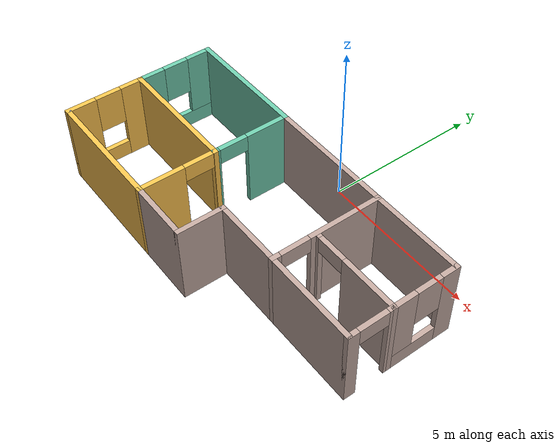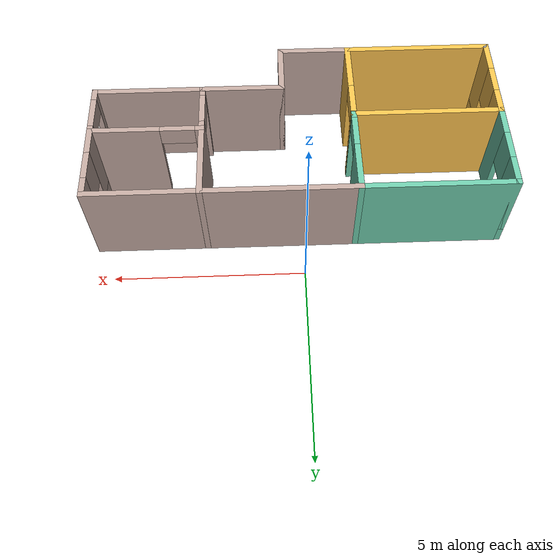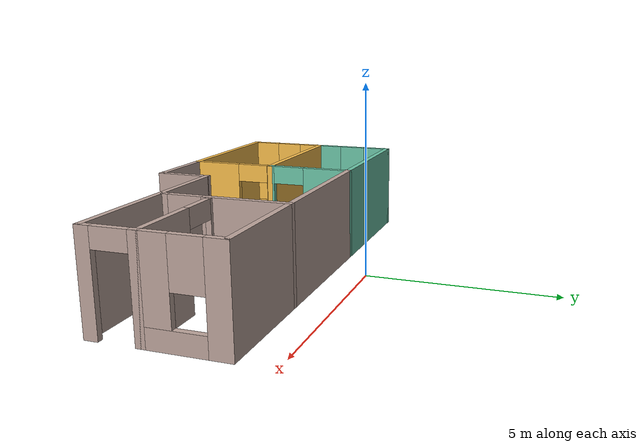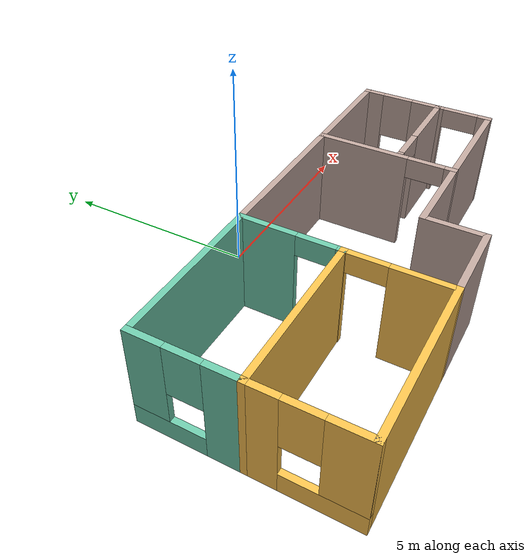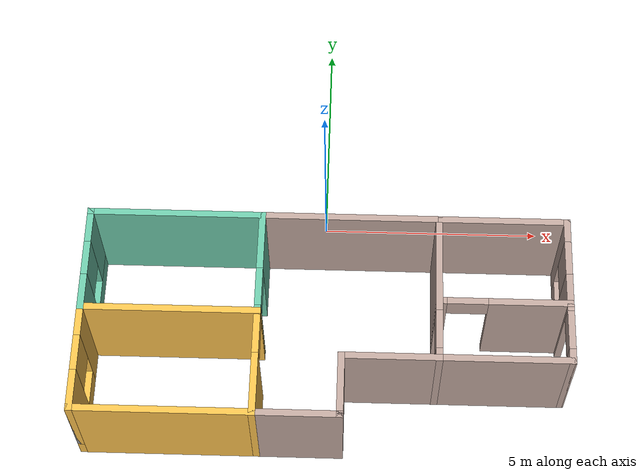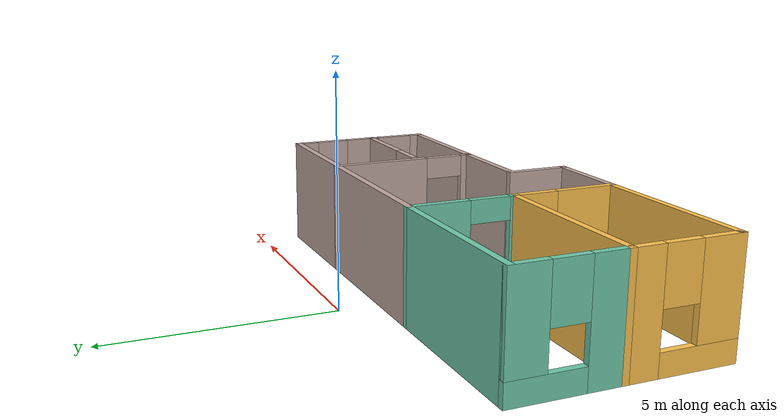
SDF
<?xml version='1.0'?>
<sdf version='1.6'>
  <model name='room1'>
    <pose frame=''>0.095 -3.31 0 0 -0 0</pose>
    <link name='Wall_0'>
      <pose frame=''>-5.325 1.175 0 0 -0 1.5708</pose>
      <visual name='Wall_0_Visual_0'>
        <pose frame=''>-0.821538 0 1.25 0 -0 0</pose>
        <geometry>
          <box>
            <size>0.856925 0.15 2.5</size>
          </box>
        </geometry>
        <material>
          <script>
            <uri>file://media/materials/scripts/gazebo.material</uri>
            <name>Gazebo/Grey</name>
          </script>
          <ambient>0.435294 0.796078 0.67451 1</ambient>
        </material>
        <meta>
          <layer>0</layer>
        </meta>
      </visual>
      <collision name='Wall_0_Collision_0'>
        <geometry>
          <box>
            <size>0.856925 0.15 2.5</size>
          </box>
        </geometry>
        <pose frame=''>-0.821538 0 1.25 0 -0 0</pose>
      </collision>
      <visual name='Wall_0_Visual_1'>
        <pose frame=''>0.428462 0 0.25 0 -0 0</pose>
        <geometry>
          <box>
            <size>1.64308 0.15 0.5</size>
          </box>
        </geometry>
        <material>
          <script>
            <uri>file://media/materials/scripts/gazebo.material</uri>
            <name>Gazebo/Grey</name>
          </script>
          <ambient>0.435294 0.796078 0.67451 1</ambient>
        </material>
        <meta>
          <layer>0</layer>
        </meta>
      </visual>
      <collision name='Wall_0_Collision_1'>
        <geometry>
          <box>
            <size>1.64308 0.15 0.5</size>
          </box>
        </geometry>
        <pose frame=''>0.428462 0 0.25 0 -0 0</pose>
      </collision>
      <visual name='Wall_0_Visual_2'>
        <pose frame=''>0.828462 0 1.5 0 -0 0</pose>
        <geometry>
          <box>
            <size>0.843075 0.15 2</size>
          </box>
        </geometry>
        <material>
          <script>
            <uri>file://media/materials/scripts/gazebo.material</uri>
            <name>Gazebo/Grey</name>
          </script>
          <ambient>0.435294 0.796078 0.67451 1</ambient>
        </material>
        <meta>
          <layer>0</layer>
        </meta>
      </visual>
      <collision name='Wall_0_Collision_2'>
        <geometry>
          <box>
            <size>0.843075 0.15 2</size>
          </box>
        </geometry>
        <pose frame=''>0.828462 0 1.5 0 -0 0</pose>
      </collision>
      <visual name='Wall_0_Visual_3'>
        <pose frame=''>0.006925 0 1.9 0 -0 0</pose>
        <geometry>
          <box>
            <size>0.8 0.15 1.2</size>
          </box>
        </geometry>
        <material>
          <script>
            <uri>file://media/materials/scripts/gazebo.material</uri>
            <name>Gazebo/Grey</name>
          </script>
          <ambient>0.435294 0.796078 0.67451 1</ambient>
        </material>
        <meta>
          <layer>0</layer>
        </meta>
      </visual>
      <collision name='Wall_0_Collision_3'>
        <geometry>
          <box>
            <size>0.8 0.15 1.2</size>
          </box>
        </geometry>
        <pose frame=''>0.006925 0 1.9 0 -0 0</pose>
      </collision>
    </link>
    <link name='Wall_1'>
      <collision name='Wall_1_Collision'>
        <geometry>
          <box>
            <size>4 0.15 2.5</size>
          </box>
        </geometry>
        <pose frame=''>0 0 1.25 0 -0 0</pose>
      </collision>
      <visual name='Wall_1_Visual'>
        <pose frame=''>0 0 1.25 0 -0 0</pose>
        <geometry>
          <box>
            <size>4 0.15 2.5</size>
          </box>
        </geometry>
        <material>
          <script>
            <uri>file://media/materials/scripts/gazebo.material</uri>
            <name>Gazebo/Grey</name>
          </script>
          <ambient>0.435294 0.796078 0.67451 1</ambient>
        </material>
        <meta>
          <layer>0</layer>
        </meta>
      </visual>
      <pose frame=''>-3.4 2.35 0 0 -0 0</pose>
    </link>
    <link name='Wall_10'>
      <collision name='Wall_10_Collision'>
        <geometry>
          <box>
            <size>0.15 0.15 2.5</size>
          </box>
        </geometry>
        <pose frame=''>0 0 1.25 0 -0 0</pose>
      </collision>
      <visual name='Wall_10_Visual'>
        <pose frame=''>0 0 1.25 0 -0 0</pose>
        <geometry>
          <box>
            <size>0.15 0.15 2.5</size>
          </box>
        </geometry>
        <material>
          <script>
            <uri>file://media/materials/scripts/gazebo.material</uri>
            <name>Gazebo/Grey</name>
          </script>
          <ambient>1 1 1 1</ambient>
        </material>
        <meta>
          <layer>0</layer>
        </meta>
      </visual>
      <pose frame=''>-5.325 -2.35 0 0 -0 0</pose>
    </link>
    <link name='Wall_11'>
      <collision name='Wall_11_Collision'>
        <geometry>
          <box>
            <size>4 0.15 2.5</size>
          </box>
        </geometry>
        <pose frame=''>0 0 1.25 0 -0 0</pose>
      </collision>
      <visual name='Wall_11_Visual'>
        <pose frame=''>0 0 1.25 0 -0 0</pose>
        <geometry>
          <box>
            <size>4 0.15 2.5</size>
          </box>
        </geometry>
        <material>
          <script>
            <uri>file://media/materials/scripts/gazebo.material</uri>
            <name>Gazebo/Grey</name>
          </script>
          <ambient>1 0.764706 0.305882 1</ambient>
        </material>
        <meta>
          <layer>0</layer>
        </meta>
      </visual>
      <pose frame=''>-3.4 -2.35 0 0 -0 0</pose>
    </link>
    <link name='Wall_12'>
      <pose frame=''>-1.475 -1.175 0 0 -0 1.5708</pose>
      <visual name='Wall_12_Visual_0'>
        <pose frame=''>-0.531538 0 1.25 0 -0 0</pose>
        <geometry>
          <box>
            <size>1.43693 0.15 2.5</size>
          </box>
        </geometry>
        <material>
          <script>
            <uri>file://media/materials/scripts/gazebo.material</uri>
            <name>Gazebo/Grey</name>
          </script>
          <ambient>1 0.764706 0.305882 1</ambient>
        </material>
        <meta>
          <layer>0</layer>
        </meta>
      </visual>
      <collision name='Wall_12_Collision_0'>
        <geometry>
          <box>
            <size>1.43693 0.15 2.5</size>
          </box>
        </geometry>
        <pose frame=''>-0.531538 0 1.25 0 -0 0</pose>
      </collision>
      <visual name='Wall_12_Visual_1'>
        <pose frame=''>1.16846 0 1.25 0 -0 0</pose>
        <geometry>
          <box>
            <size>0.163075 0.15 2.5</size>
          </box>
        </geometry>
        <material>
          <script>
            <uri>file://media/materials/scripts/gazebo.material</uri>
            <name>Gazebo/Grey</name>
          </script>
          <ambient>1 0.764706 0.305882 1</ambient>
        </material>
        <meta>
          <layer>0</layer>
        </meta>
      </visual>
      <collision name='Wall_12_Collision_1'>
        <geometry>
          <box>
            <size>0.163075 0.15 2.5</size>
          </box>
        </geometry>
        <pose frame=''>1.16846 0 1.25 0 -0 0</pose>
      </collision>
      <visual name='Wall_12_Visual_2'>
        <pose frame=''>0.636925 0 2.25 0 -0 0</pose>
        <geometry>
          <box>
            <size>0.9 0.15 0.5</size>
          </box>
        </geometry>
        <material>
          <script>
            <uri>file://media/materials/scripts/gazebo.material</uri>
            <name>Gazebo/Grey</name>
          </script>
          <ambient>1 0.764706 0.305882 1</ambient>
        </material>
        <meta>
          <layer>0</layer>
        </meta>
      </visual>
      <collision name='Wall_12_Collision_2'>
        <geometry>
          <box>
            <size>0.9 0.15 0.5</size>
          </box>
        </geometry>
        <pose frame=''>0.636925 0 2.25 0 -0 0</pose>
      </collision>
    </link>
    <link name='Wall_2'>
      <pose frame=''>-1.475 1.175 0 0 0 -1.5708</pose>
      <visual name='Wall_2_Visual_0'>
        <pose frame=''>-0.553462 0 1.25 0 -0 0</pose>
        <geometry>
          <box>
            <size>1.39308 0.15 2.5</size>
          </box>
        </geometry>
        <material>
          <script>
            <uri>file://media/materials/scripts/gazebo.material</uri>
            <name>Gazebo/Grey</name>
          </script>
          <ambient>0.435294 0.796078 0.67451 1</ambient>
        </material>
        <meta>
          <layer>0</layer>
        </meta>
      </visual>
      <collision name='Wall_2_Collision_0'>
        <geometry>
          <box>
            <size>1.39308 0.15 2.5</size>
          </box>
        </geometry>
        <pose frame=''>-0.553462 0 1.25 0 -0 0</pose>
      </collision>
      <visual name='Wall_2_Visual_1'>
        <pose frame=''>1.14654 0 1.25 0 -0 0</pose>
        <geometry>
          <box>
            <size>0.206924 0.15 2.5</size>
          </box>
        </geometry>
        <material>
          <script>
            <uri>file://media/materials/scripts/gazebo.material</uri>
            <name>Gazebo/Grey</name>
          </script>
          <ambient>0.435294 0.796078 0.67451 1</ambient>
        </material>
        <meta>
          <layer>0</layer>
        </meta>
      </visual>
      <collision name='Wall_2_Collision_1'>
        <geometry>
          <box>
            <size>0.206924 0.15 2.5</size>
          </box>
        </geometry>
        <pose frame=''>1.14654 0 1.25 0 -0 0</pose>
      </collision>
      <visual name='Wall_2_Visual_2'>
        <pose frame=''>0.593076 0 2.25 0 -0 0</pose>
        <geometry>
          <box>
            <size>0.9 0.15 0.5</size>
          </box>
        </geometry>
        <material>
          <script>
            <uri>file://media/materials/scripts/gazebo.material</uri>
            <name>Gazebo/Grey</name>
          </script>
          <ambient>0.435294 0.796078 0.67451 1</ambient>
        </material>
        <meta>
          <layer>0</layer>
        </meta>
      </visual>
      <collision name='Wall_2_Collision_2'>
        <geometry>
          <box>
            <size>0.9 0.15 0.5</size>
          </box>
        </geometry>
        <pose frame=''>0.593076 0 2.25 0 -0 0</pose>
      </collision>
    </link>
    <link name='Wall_23'>
      <collision name='Wall_23_Collision'>
        <geometry>
          <box>
            <size>2 0.15 2.5</size>
          </box>
        </geometry>
        <pose frame=''>0 0 1.25 0 -0 0</pose>
      </collision>
      <visual name='Wall_23_Visual'>
        <pose frame=''>0 0 1.25 0 -0 0</pose>
        <geometry>
          <box>
            <size>2 0.15 2.5</size>
          </box>
        </geometry>
        <material>
          <script>
            <uri>file://media/materials/scripts/gazebo.material</uri>
            <name>Gazebo/Grey</name>
          </script>
          <ambient>0.760784 0.662745 0.627451 1</ambient>
        </material>
        <meta>
          <layer>0</layer>
        </meta>
      </visual>
      <pose frame=''>-0.55 -2.35 0 0 -0 0</pose>
    </link>
    <link name='Wall_24'>
      <collision name='Wall_24_Collision'>
        <geometry>
          <box>
            <size>1.5 0.15 2.5</size>
          </box>
        </geometry>
        <pose frame=''>0 0 1.25 0 -0 0</pose>
      </collision>
      <visual name='Wall_24_Visual'>
        <pose frame=''>0 0 1.25 0 -0 0</pose>
        <geometry>
          <box>
            <size>1.5 0.15 2.5</size>
          </box>
        </geometry>
        <material>
          <script>
            <uri>file://media/materials/scripts/gazebo.material</uri>
            <name>Gazebo/Grey</name>
          </script>
          <ambient>0.760784 0.662745 0.627451 1</ambient>
        </material>
        <meta>
          <layer>0</layer>
        </meta>
      </visual>
      <pose frame=''>0.375 -1.675 0 0 -0 1.5708</pose>
    </link>
    <link name='Wall_25'>
      <collision name='Wall_25_Collision'>
        <geometry>
          <box>
            <size>2.25 0.15 2.5</size>
          </box>
        </geometry>
        <pose frame=''>0 0 1.25 0 -0 0</pose>
      </collision>
      <visual name='Wall_25_Visual'>
        <pose frame=''>0 0 1.25 0 -0 0</pose>
        <geometry>
          <box>
            <size>2.25 0.15 2.5</size>
          </box>
        </geometry>
        <material>
          <script>
            <uri>file://media/materials/scripts/gazebo.material</uri>
            <name>Gazebo/Grey</name>
          </script>
          <ambient>0.760784 0.662745 0.627451 1</ambient>
        </material>
        <meta>
          <layer>0</layer>
        </meta>
      </visual>
      <pose frame=''>1.425 -1 0 0 -0 0</pose>
    </link>
    <link name='Wall_26'>
      <pose frame=''>2.475 0.675 0 0 -0 1.5708</pose>
      <visual name='Wall_26_Visual_0'>
        <pose frame=''>-1.60154 0 1.25 0 -0 0</pose>
        <geometry>
          <box>
            <size>0.296924 0.15 2.5</size>
          </box>
        </geometry>
        <material>
          <script>
            <uri>file://media/materials/scripts/gazebo.material</uri>
            <name>Gazebo/Grey</name>
          </script>
          <ambient>0.760784 0.662745 0.627451 1</ambient>
        </material>
        <meta>
          <layer>0</layer>
        </meta>
      </visual>
      <collision name='Wall_26_Collision_0'>
        <geometry>
          <box>
            <size>0.296924 0.15 2.5</size>
          </box>
        </geometry>
        <pose frame=''>-1.60154 0 1.25 0 -0 0</pose>
      </collision>
      <visual name='Wall_26_Visual_1'>
        <pose frame=''>0.598462 0 1.25 0 -0 0</pose>
        <geometry>
          <box>
            <size>2.30308 0.15 2.5</size>
          </box>
        </geometry>
        <material>
          <script>
            <uri>file://media/materials/scripts/gazebo.material</uri>
            <name>Gazebo/Grey</name>
          </script>
          <ambient>0.760784 0.662745 0.627451 1</ambient>
        </material>
        <meta>
          <layer>0</layer>
        </meta>
      </visual>
      <collision name='Wall_26_Collision_1'>
        <geometry>
          <box>
            <size>2.30308 0.15 2.5</size>
          </box>
        </geometry>
        <pose frame=''>0.598462 0 1.25 0 -0 0</pose>
      </collision>
      <visual name='Wall_26_Visual_2'>
        <pose frame=''>-1.00308 0 2.25 0 -0 0</pose>
        <geometry>
          <box>
            <size>0.9 0.15 0.5</size>
          </box>
        </geometry>
        <material>
          <script>
            <uri>file://media/materials/scripts/gazebo.material</uri>
            <name>Gazebo/Grey</name>
          </script>
          <ambient>0.760784 0.662745 0.627451 1</ambient>
        </material>
        <meta>
          <layer>0</layer>
        </meta>
      </visual>
      <collision name='Wall_26_Collision_2'>
        <geometry>
          <box>
            <size>0.9 0.15 0.5</size>
          </box>
        </geometry>
        <pose frame=''>-1.00308 0 2.25 0 -0 0</pose>
      </collision>
    </link>
    <link name='Wall_28'>
      <collision name='Wall_28_Collision'>
        <geometry>
          <box>
            <size>3 0.15 2.5</size>
          </box>
        </geometry>
        <pose frame=''>0 0 1.25 0 -0 0</pose>
      </collision>
      <visual name='Wall_28_Visual'>
        <pose frame=''>0 0 1.25 0 -0 0</pose>
        <geometry>
          <box>
            <size>3 0.15 2.5</size>
          </box>
        </geometry>
        <material>
          <script>
            <uri>file://media/materials/scripts/gazebo.material</uri>
            <name>Gazebo/Grey</name>
          </script>
          <ambient>0.760784 0.662745 0.627451 1</ambient>
        </material>
        <meta>
          <layer>0</layer>
        </meta>
      </visual>
      <pose frame=''>3.9 -1 0 0 -0 0</pose>
    </link>
    <link name='Wall_29'>
      <pose frame=''>5.325 -0.325 0 0 -0 1.5708</pose>
      <visual name='Wall_29_Visual_0'>
        <pose frame=''>-0.571538 0 1.25 0 -0 0</pose>
        <geometry>
          <box>
            <size>0.356925 0.15 2.5</size>
          </box>
        </geometry>
        <material>
          <script>
            <uri>file://media/materials/scripts/gazebo.material</uri>
            <name>Gazebo/Grey</name>
          </script>
          <ambient>0.760784 0.662745 0.627451 1</ambient>
        </material>
        <meta>
          <layer>0</layer>
        </meta>
      </visual>
      <collision name='Wall_29_Collision_0'>
        <geometry>
          <box>
            <size>0.356925 0.15 2.5</size>
          </box>
        </geometry>
        <pose frame=''>-0.571538 0 1.25 0 -0 0</pose>
      </collision>
      <visual name='Wall_29_Visual_1'>
        <pose frame=''>0.628462 0 1.25 0 -0 0</pose>
        <geometry>
          <box>
            <size>0.243075 0.15 2.5</size>
          </box>
        </geometry>
        <material>
          <script>
            <uri>file://media/materials/scripts/gazebo.material</uri>
            <name>Gazebo/Grey</name>
          </script>
          <ambient>0.760784 0.662745 0.627451 1</ambient>
        </material>
        <meta>
          <layer>0</layer>
        </meta>
      </visual>
      <collision name='Wall_29_Collision_1'>
        <geometry>
          <box>
            <size>0.243075 0.15 2.5</size>
          </box>
        </geometry>
        <pose frame=''>0.628462 0 1.25 0 -0 0</pose>
      </collision>
      <visual name='Wall_29_Visual_2'>
        <pose frame=''>0.056925 0 2.25 0 -0 0</pose>
        <geometry>
          <box>
            <size>0.9 0.15 0.5</size>
          </box>
        </geometry>
        <material>
          <script>
            <uri>file://media/materials/scripts/gazebo.material</uri>
            <name>Gazebo/Grey</name>
          </script>
          <ambient>0.760784 0.662745 0.627451 1</ambient>
        </material>
        <meta>
          <layer>0</layer>
        </meta>
      </visual>
      <collision name='Wall_29_Collision_2'>
        <geometry>
          <box>
            <size>0.9 0.15 0.5</size>
          </box>
        </geometry>
        <pose frame=''>0.056925 0 2.25 0 -0 0</pose>
      </collision>
    </link>
    <link name='Wall_30'>
      <pose frame=''>3.9 0.35 0 0 -0 3.14159</pose>
      <visual name='Wall_30_Visual_0'>
        <pose frame=''>-0.570848 0 1.25 0 -0 0</pose>
        <geometry>
          <box>
            <size>1.8583 0.15 2.5</size>
          </box>
        </geometry>
        <material>
          <script>
            <uri>file://media/materials/scripts/gazebo.material</uri>
            <name>Gazebo/Grey</name>
          </script>
          <ambient>0.760784 0.662745 0.627451 1</ambient>
        </material>
        <meta>
          <layer>0</layer>
        </meta>
      </visual>
      <collision name='Wall_30_Collision_0'>
        <geometry>
          <box>
            <size>1.8583 0.15 2.5</size>
          </box>
        </geometry>
        <pose frame=''>-0.570848 0 1.25 0 -0 0</pose>
      </collision>
      <visual name='Wall_30_Visual_1'>
        <pose frame=''>1.37915 0 1.25 0 -0 0</pose>
        <geometry>
          <box>
            <size>0.241696 0.15 2.5</size>
          </box>
        </geometry>
        <material>
          <script>
            <uri>file://media/materials/scripts/gazebo.material</uri>
            <name>Gazebo/Grey</name>
          </script>
          <ambient>0.760784 0.662745 0.627451 1</ambient>
        </material>
        <meta>
          <layer>0</layer>
        </meta>
      </visual>
      <collision name='Wall_30_Collision_1'>
        <geometry>
          <box>
            <size>0.241696 0.15 2.5</size>
          </box>
        </geometry>
        <pose frame=''>1.37915 0 1.25 0 -0 0</pose>
      </collision>
      <visual name='Wall_30_Visual_2'>
        <pose frame=''>0.808304 0 2.25 0 -0 0</pose>
        <geometry>
          <box>
            <size>0.9 0.15 0.5</size>
          </box>
        </geometry>
        <material>
          <script>
            <uri>file://media/materials/scripts/gazebo.material</uri>
            <name>Gazebo/Grey</name>
          </script>
          <ambient>0.760784 0.662745 0.627451 1</ambient>
        </material>
        <meta>
          <layer>0</layer>
        </meta>
      </visual>
      <collision name='Wall_30_Collision_2'>
        <geometry>
          <box>
            <size>0.9 0.15 0.5</size>
          </box>
        </geometry>
        <pose frame=''>0.808304 0 2.25 0 -0 0</pose>
      </collision>
    </link>
    <link name='Wall_32'>
      <collision name='Wall_32_Collision'>
        <geometry>
          <box>
            <size>3 0.15 2.5</size>
          </box>
        </geometry>
        <pose frame=''>0 0 1.25 0 -0 0</pose>
      </collision>
      <visual name='Wall_32_Visual'>
        <pose frame=''>0 0 1.25 0 -0 0</pose>
        <geometry>
          <box>
            <size>3 0.15 2.5</size>
          </box>
        </geometry>
        <material>
          <script>
            <uri>file://media/materials/scripts/gazebo.material</uri>
            <name>Gazebo/Grey</name>
          </script>
          <ambient>0.760784 0.662745 0.627451 1</ambient>
        </material>
        <meta>
          <layer>0</layer>
        </meta>
      </visual>
      <pose frame=''>3.9 2.35 0 0 -0 0</pose>
    </link>
    <link name='Wall_33'>
      <pose frame=''>5.325 1.35 0 0 0 -1.5708</pose>
      <visual name='Wall_33_Visual_0'>
        <pose frame=''>-0.793462 0 1.25 0 -0 0</pose>
        <geometry>
          <box>
            <size>0.563075 0.15 2.5</size>
          </box>
        </geometry>
        <material>
          <script>
            <uri>file://media/materials/scripts/gazebo.material</uri>
            <name>Gazebo/Grey</name>
          </script>
          <ambient>0.760784 0.662745 0.627451 1</ambient>
        </material>
        <meta>
          <layer>0</layer>
        </meta>
      </visual>
      <collision name='Wall_33_Collision_0'>
        <geometry>
          <box>
            <size>0.563075 0.15 2.5</size>
          </box>
        </geometry>
        <pose frame=''>-0.793462 0 1.25 0 -0 0</pose>
      </collision>
      <visual name='Wall_33_Visual_1'>
        <pose frame=''>0.281538 0 0.25 0 -0 0</pose>
        <geometry>
          <box>
            <size>1.58692 0.15 0.5</size>
          </box>
        </geometry>
        <material>
          <script>
            <uri>file://media/materials/scripts/gazebo.material</uri>
            <name>Gazebo/Grey</name>
          </script>
          <ambient>0.760784 0.662745 0.627451 1</ambient>
        </material>
        <meta>
          <layer>0</layer>
        </meta>
      </visual>
      <collision name='Wall_33_Collision_1'>
        <geometry>
          <box>
            <size>1.58692 0.15 0.5</size>
          </box>
        </geometry>
        <pose frame=''>0.281538 0 0.25 0 -0 0</pose>
      </collision>
      <visual name='Wall_33_Visual_2'>
        <pose frame=''>0.681538 0 1.5 0 -0 0</pose>
        <geometry>
          <box>
            <size>0.786925 0.15 2</size>
          </box>
        </geometry>
        <material>
          <script>
            <uri>file://media/materials/scripts/gazebo.material</uri>
            <name>Gazebo/Grey</name>
          </script>
          <ambient>0.760784 0.662745 0.627451 1</ambient>
        </material>
        <meta>
          <layer>0</layer>
        </meta>
      </visual>
      <collision name='Wall_33_Collision_2'>
        <geometry>
          <box>
            <size>0.786925 0.15 2</size>
          </box>
        </geometry>
        <pose frame=''>0.681538 0 1.5 0 -0 0</pose>
      </collision>
      <visual name='Wall_33_Visual_3'>
        <pose frame=''>-0.111925 0 1.9 0 -0 0</pose>
        <geometry>
          <box>
            <size>0.8 0.15 1.2</size>
          </box>
        </geometry>
        <material>
          <script>
            <uri>file://media/materials/scripts/gazebo.material</uri>
            <name>Gazebo/Grey</name>
          </script>
          <ambient>0.760784 0.662745 0.627451 1</ambient>
        </material>
        <meta>
          <layer>0</layer>
        </meta>
      </visual>
      <collision name='Wall_33_Collision_3'>
        <geometry>
          <box>
            <size>0.8 0.15 1.2</size>
          </box>
        </geometry>
        <pose frame=''>-0.111925 0 1.9 0 -0 0</pose>
      </collision>
    </link>
    <link name='Wall_4'>
      <collision name='Wall_4_Collision'>
        <geometry>
          <box>
            <size>4 0.15 2.5</size>
          </box>
        </geometry>
        <pose frame=''>0 0 1.25 0 -0 0</pose>
      </collision>
      <visual name='Wall_4_Visual'>
        <pose frame=''>0 0 1.25 0 -0 0</pose>
        <geometry>
          <box>
            <size>4 0.15 2.5</size>
          </box>
        </geometry>
        <material>
          <script>
            <uri>file://media/materials/scripts/gazebo.material</uri>
            <name>Gazebo/Grey</name>
          </script>
          <ambient>0.760784 0.662745 0.627451 1</ambient>
        </material>
        <meta>
          <layer>0</layer>
        </meta>
      </visual>
      <pose frame=''>0.45 2.35 0 0 -0 0</pose>
    </link>
    <link name='Wall_7'>
      <collision name='Wall_7_Collision'>
        <geometry>
          <box>
            <size>4 0.15 2.5</size>
          </box>
        </geometry>
        <pose frame=''>0 0 1.25 0 -0 0</pose>
      </collision>
      <visual name='Wall_7_Visual'>
        <pose frame=''>0 0 1.25 0 -0 0</pose>
        <geometry>
          <box>
            <size>4 0.15 2.5</size>
          </box>
        </geometry>
        <material>
          <script>
            <uri>file://media/materials/scripts/gazebo.material</uri>
            <name>Gazebo/Grey</name>
          </script>
          <ambient>1 0.764706 0.305882 1</ambient>
        </material>
        <meta>
          <layer>0</layer>
        </meta>
      </visual>
      <pose frame=''>-3.4 0 0 0 -0 0</pose>
    </link>
    <link name='Wall_9'>
      <pose frame=''>-5.325 -1.175 0 0 0 -1.5708</pose>
      <visual name='Wall_9_Visual_0'>
        <pose frame=''>-0.868462 0 1.25 0 -0 0</pose>
        <geometry>
          <box>
            <size>0.763075 0.15 2.5</size>
          </box>
        </geometry>
        <material>
          <script>
            <uri>file://media/materials/scripts/gazebo.material</uri>
            <name>Gazebo/Grey</name>
          </script>
          <ambient>1 0.764706 0.305882 1</ambient>
        </material>
        <meta>
          <layer>0</layer>
        </meta>
      </visual>
      <collision name='Wall_9_Collision_0'>
        <geometry>
          <box>
            <size>0.763075 0.15 2.5</size>
          </box>
        </geometry>
        <pose frame=''>-0.868462 0 1.25 0 -0 0</pose>
      </collision>
      <visual name='Wall_9_Visual_1'>
        <pose frame=''>0.381538 0 0.25 0 -0 0</pose>
        <geometry>
          <box>
            <size>1.73693 0.15 0.5</size>
          </box>
        </geometry>
        <material>
          <script>
            <uri>file://media/materials/scripts/gazebo.material</uri>
            <name>Gazebo/Grey</name>
          </script>
          <ambient>1 0.764706 0.305882 1</ambient>
        </material>
        <meta>
          <layer>0</layer>
        </meta>
      </visual>
      <collision name='Wall_9_Collision_1'>
        <geometry>
          <box>
            <size>1.73693 0.15 0.5</size>
          </box>
        </geometry>
        <pose frame=''>0.381538 0 0.25 0 -0 0</pose>
      </collision>
      <visual name='Wall_9_Visual_2'>
        <pose frame=''>0.781538 0 1.5 0 -0 0</pose>
        <geometry>
          <box>
            <size>0.936925 0.15 2</size>
          </box>
        </geometry>
        <material>
          <script>
            <uri>file://media/materials/scripts/gazebo.material</uri>
            <name>Gazebo/Grey</name>
          </script>
          <ambient>1 0.764706 0.305882 1</ambient>
        </material>
        <meta>
          <layer>0</layer>
        </meta>
      </visual>
      <collision name='Wall_9_Collision_2'>
        <geometry>
          <box>
            <size>0.936925 0.15 2</size>
          </box>
        </geometry>
        <pose frame=''>0.781538 0 1.5 0 -0 0</pose>
      </collision>
      <visual name='Wall_9_Visual_3'>
        <pose frame=''>-0.086925 0 1.9 0 -0 0</pose>
        <geometry>
          <box>
            <size>0.8 0.15 1.2</size>
          </box>
        </geometry>
        <material>
          <script>
            <uri>file://media/materials/scripts/gazebo.material</uri>
            <name>Gazebo/Grey</name>
          </script>
          <ambient>1 0.764706 0.305882 1</ambient>
        </material>
        <meta>
          <layer>0</layer>
        </meta>
      </visual>
      <collision name='Wall_9_Collision_3'>
        <geometry>
          <box>
            <size>0.8 0.15 1.2</size>
          </box>
        </geometry>
        <pose frame=''>-0.086925 0 1.9 0 -0 0</pose>
      </collision>
    </link>
    <static>1</static>
  </model>
</sdf>
